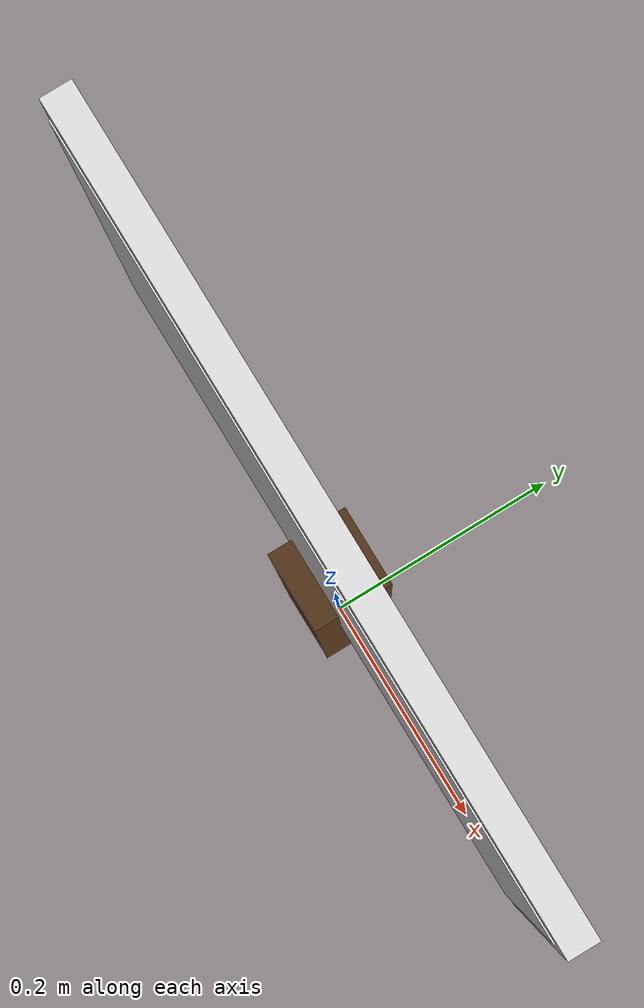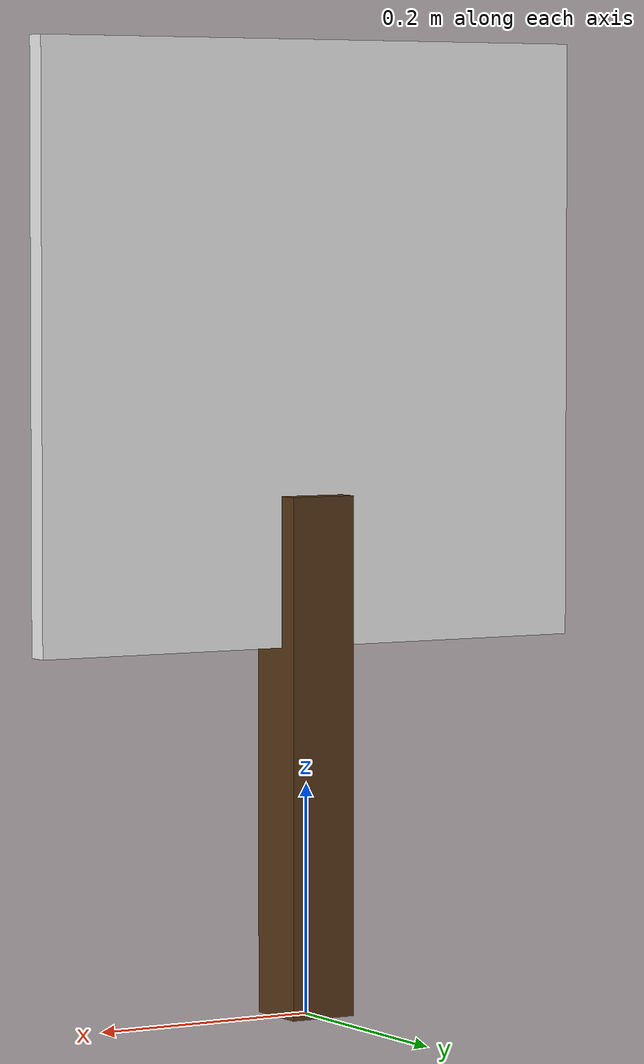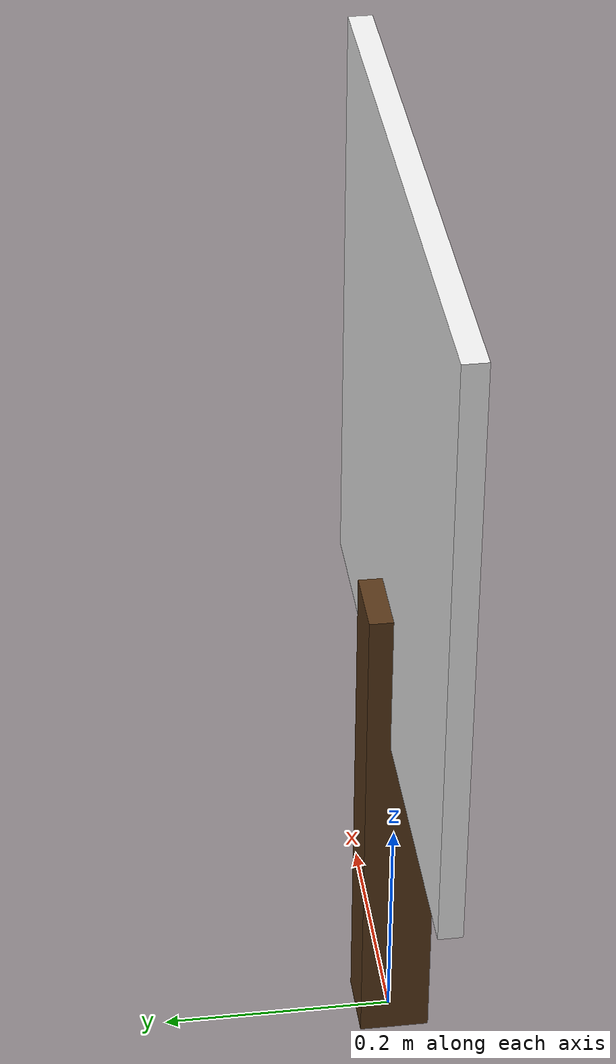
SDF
<?xml version="1.0" ?>
<sdf version="1.6">
  <model name="sign_restaurant">
    <static>true</static>
    <link name="link">

      <!-- wooden pole: 0.45 m tall, centre Z=0.225 -->
      <visual name="pole">
        <pose>0 0 0.225 0 0 0</pose>
        <geometry><box><size>0.06 0.06 0.45</size></box></geometry>
        <material>
          <ambient>0.35 0.22 0.10 1</ambient>
          <diffuse>0.35 0.22 0.10 1</diffuse>
        </material>
      </visual>
      <collision name="pole_col">
        <pose>0 0 0.225 0 0 0</pose>
        <geometry><box><size>0.06 0.06 0.45</size></box></geometry>
      </collision>

      <!-- QR board body: white backing (0.52 x 0.52 m), centre Z=0.58 -->
      <visual name="board_body">
        <pose>0 0 0.58 0 0 0</pose>
        <geometry><box><size>0.52 0.02 0.52</size></box></geometry>
        <material>
          <ambient>0.95 0.95 0.95 1</ambient>
          <diffuse>0.95 0.95 0.95 1</diffuse>
        </material>
      </visual>
      <!-- QR face: ultra-thin overlay on local -Y side only.
           The white board body hides the +Y (back) face of this overlay,
           so the QR is effectively one-sided (front face only). -->
      <visual name="board_qr">
        <pose>0 -0.011 0.58 0 0 0</pose>
        <geometry><box><size>0.50 0.001 0.50</size></box></geometry>
        <material>
          <ambient>1 1 1 1</ambient>
          <diffuse>1 1 1 1</diffuse>
          <pbr>
            <metal>
              <albedo_map>model://sign_restaurant/materials/textures/qr_restaurant.png</albedo_map>
            </metal>
          </pbr>
        </material>
      </visual>
      <collision name="board_col">
        <pose>0 0 0.58 0 0 0</pose>
        <geometry><box><size>0.52 0.02 0.52</size></box></geometry>
      </collision>

    </link>
  </model>
</sdf>
